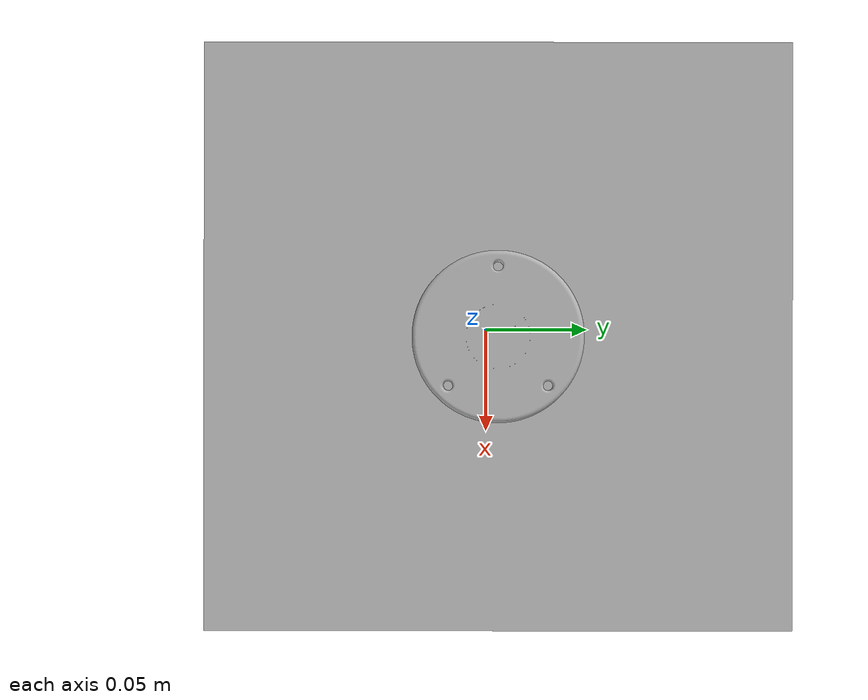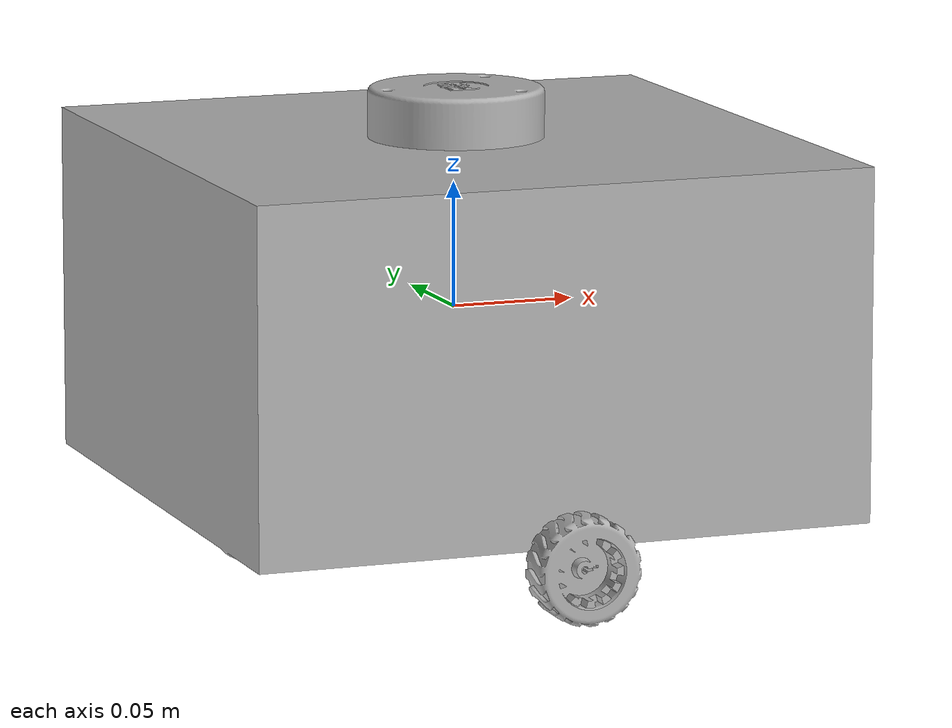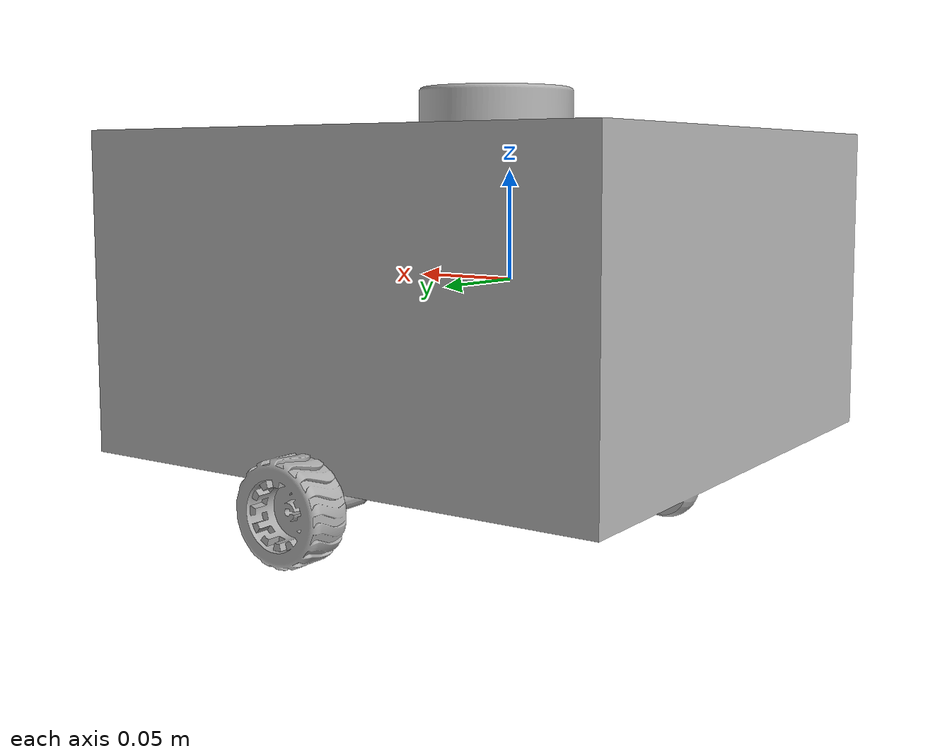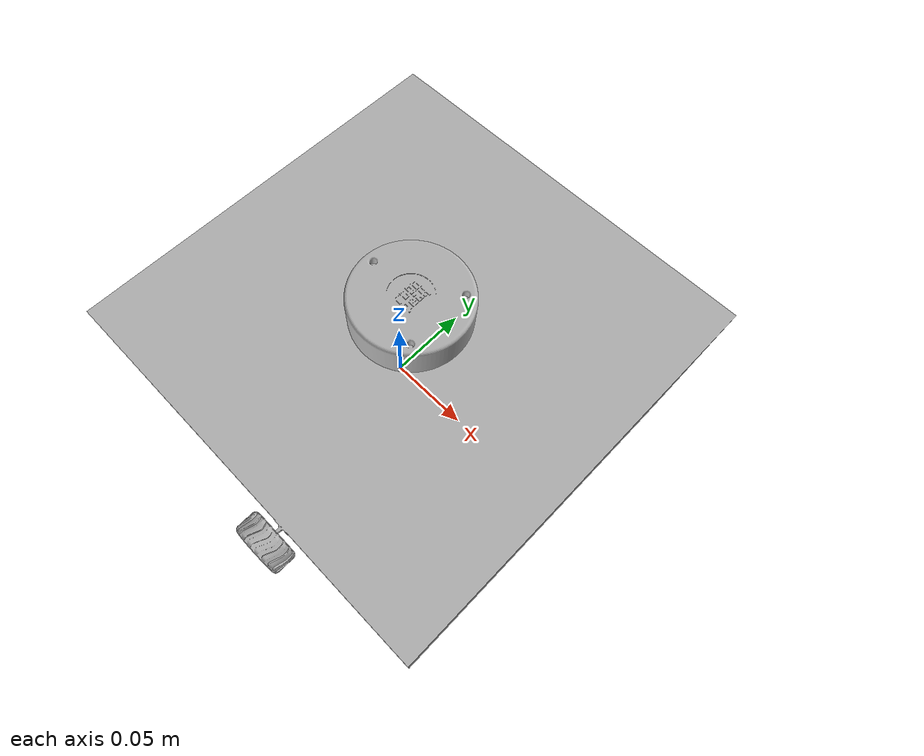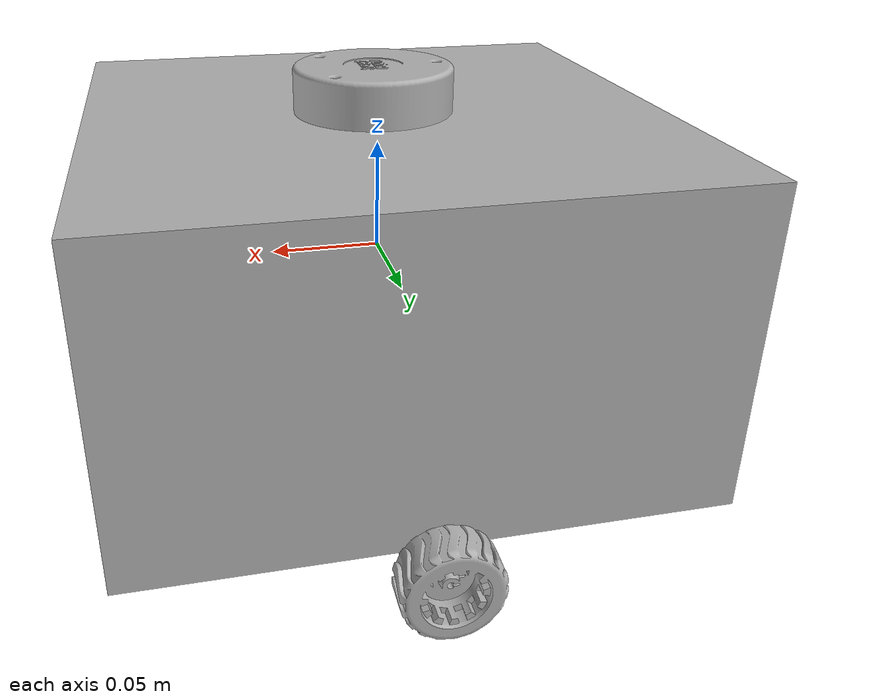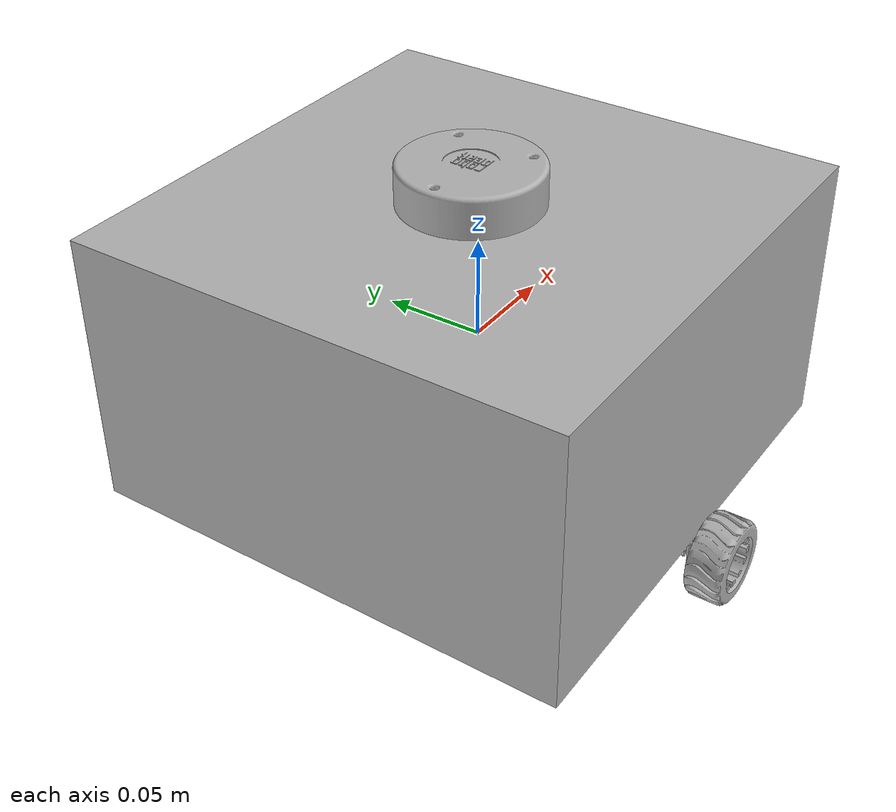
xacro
<?xml version="1.0" ?>
<robot name="cardo" xmlns:xacro="http://www.ros.org/wiki/xacro">

<xacro:include filename="$(find cadro_description)/urdf/materials.xacro" />
<xacro:include filename="$(find cadro_description)/urdf/cardo.trans" />
<xacro:include filename="$(find cadro_description)/urdf/cardo.gazebo" />
<link name="base_link">
  <inertial>
    <origin xyz="0.0032579068087706807 0.006021175164711509 -0.0016791583896604279" rpy="0 0 0"/>
    <mass value="15.093163777470394"/>
    <inertia ixx="0.103336" iyy="0.104072" izz="0.152929" ixy="-5e-06" iyz="4e-06" ixz="1.2e-05"/>
  </inertial>
  <visual>
    <origin xyz="0 0 0" rpy="0 0 0"/>
    <geometry>
      <mesh filename="file://$(find cadro_description)/meshes/base_link.stl" scale="0.001 0.001 0.001"/>
    </geometry>
    <material name="silver"/>
  </visual>
  <collision>
    <origin xyz="0 0 0" rpy="0 0 0"/>
    <geometry>
      <mesh filename="file://$(find cadro_description)/meshes/base_link.stl" scale="0.001 0.001 0.001"/>
    </geometry>
  </collision>
</link>

<link name="lidar_1_1">
  <inertial>
    <origin xyz="-0.1020444054381769 -0.0349867086487295 -0.00238170548299238" rpy="0 0 0"/>
    <mass value="1.3392964352221832"/>
    <inertia ixx="0.000967" iyy="0.000619" izz="0.001105" ixy="1e-06" iyz="0.000159" ixz="3e-06"/>
  </inertial>
  <visual>
    <origin xyz="-0.105378 -0.04777 -0.067125" rpy="0 0 0"/>
    <geometry>
      <mesh filename="file://$(find cadro_description)/meshes/lidar_1_1.stl" scale="0.001 0.001 0.001"/>
    </geometry>
    <material name="silver"/>
  </visual>
  <collision>
    <origin xyz="-0.105378 -0.04777 -0.067125" rpy="0 0 0"/>
    <geometry>
      <mesh filename="file://$(find cadro_description)/meshes/lidar_1_1.stl" scale="0.001 0.001 0.001"/>
    </geometry>
  </collision>
</link>

<link name="wheel_v5__1__1">
  <inertial>
    <origin xyz="-6.476358547345511e-06 -0.007540075460619161 1.1102320250644393e-07" rpy="0 0 0"/>
    <mass value="1.020021601354988396"/>
    <inertia ixx="3e-06" iyy="5e-06" izz="3e-06" ixy="0.0" iyz="-0.0" ixz="-0.0"/>
  </inertial>
  <visual>
    <origin xyz="-0.003242 0.125033 0.077875" rpy="0 0 0"/>
    <geometry>
      <mesh filename="file://$(find cadro_description)/meshes/wheel_v5__1__1.stl" scale="0.001 0.001 0.001"/>
    </geometry>
    <material name="silver"/>
  </visual>
  <collision>
    <origin xyz="-0.003242 0.125033 0.077875" rpy="0 0 0"/>
    <geometry>
      <mesh filename="file://$(find cadro_description)/meshes/wheel_v5__1__1.stl" scale="0.001 0.001 0.001"/>
    </geometry>
  </collision>
</link>

<link name="wheel_v5_1">
  <inertial>
    <origin xyz="5.812810676029349e-06 0.007539421323962625 1.1102320213174366e-07" rpy="0 0 0"/>
    <mass value="1.020021601354988396"/>
    <inertia ixx="3e-06" iyy="5e-06" izz="3e-06" ixy="0.0" iyz="0.0" ixz="0.0"/>
  </inertial>
  <visual>
    <origin xyz="-0.003242 -0.137067 0.077875" rpy="0 0 0"/>
    <geometry>
      <mesh filename="file://$(find cadro_description)/meshes/wheel_v5_1.stl" scale="0.001 0.001 0.001"/>
    </geometry>
    <material name="silver"/>
  </visual>
  <collision>
    <origin xyz="-0.003242 -0.137067 0.077875" rpy="0 0 0"/>
    <geometry>
      <mesh filename="file://$(find cadro_description)/meshes/wheel_v5_1.stl" scale="0.001 0.001 0.001"/>
    </geometry>
  </collision>
</link>

<joint name="Rigid 21" type="fixed">
  <origin xyz="0.105378 0.04777 0.067125" rpy="0 0 0"/>
  <parent link="base_link"/>
  <child link="lidar_1_1"/>
</joint>

<joint name="Revolute 22" type="continuous">
  <origin xyz="0.003242 -0.125033 -0.077875" rpy="0 0 0"/>
  <parent link="base_link"/>
  <child link="wheel_v5__1__1"/>
  <axis xyz="-0.0 1.0 -0.0"/>
</joint>

<joint name="Revolute 23" type="continuous">
  <origin xyz="0.003242 0.137067 -0.077875" rpy="0 0 0"/>
  <parent link="base_link"/>
  <child link="wheel_v5_1"/>
  <axis xyz="-0.0 1.0 -0.0"/>
</joint>

</robot>

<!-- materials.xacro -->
<robot name="cardo" xmlns:xacro="http://www.ros.org/wiki/xacro" >

<material name="silver">
  <color rgba="0.700 0.700 0.700 1.000"/>
</material>

</robot>

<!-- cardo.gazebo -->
<robot name="cardo" xmlns:xacro="http://www.ros.org/wiki/xacro" >

<xacro:property name="body_color" value="Gazebo/Black" />

<gazebo>
    <plugin name="wheel_drive_controller" filename="libgazebo_ros_diff_drive.so">

      <!-- wheels -->
      <left_joint>Revolute 23</left_joint>
      <right_joint>Revolute 22</right_joint>

      <!-- kinematics -->
      <wheel_separation>0.2</wheel_separation>
      <wheel_diameter>0.1</wheel_diameter>
      <max_wheel_torque>100.0</max_wheel_torque>
      <max_wheel_acceleration>10.0</max_wheel_acceleration>

      <!-- odometry  -->
      <odometry_source>1</odometry_source>
      <odometry_frame>odom</odometry_frame>
      <robot_base_frame>base_link</robot_base_frame>

      <!-- topic & re remappings -->
      <ros>
        <namespace>/</namespace>
        <remapping>/cmd_vel:=cmd_vel</remapping>
        <remapping>/odom:=odom</remapping>
      </ros>

      <publish_odom>true</publish_odom>
      <publish_odom_tf>true</publish_odom_tf>
      <publish_wheel_tf>true</publish_wheel_tf>
      <update_rate>100.0</update_rate>
    </plugin>
  </gazebo>

   <gazebo reference="lidar_1_1">
        <sensor name="laser" type="ray">
            <pose> 0 0 0 0 0 0 </pose>
            <visualize>true</visualize>
            <update_rate>30</update_rate>
            <ray>
                <scan>
                    <horizontal>
                        <samples>720</samples>
                        <min_angle>0</min_angle>
                        <max_angle>6.28</max_angle>
                    </horizontal>
                </scan>
                <range>
                    <min>0.3</min>
                    <max>8</max>
                </range>
            </ray>
            <plugin name="laser_controller" filename="libgazebo_ros_ray_sensor.so">
                <ros>
                    <remapping>~/out:=/laser/scan</remapping>
                </ros>
                <output_type>sensor_msgs/LaserScan</output_type>
                <frame_name>lidar_1_1</frame_name>
            </plugin>
        </sensor>
    </gazebo>
<gazebo reference="base_link">
  <material>${body_color}</material>
  <mu1>0.2</mu1>
  <mu2>0.2</mu2>
  <selfCollide>true</selfCollide>
  <gravity>true</gravity>
</gazebo>

<gazebo reference="wheel_v5__1__1">
  <material>Gazebo/Orange</material>
  <mu1>0.2</mu1>
  <mu2>0.2</mu2>
  <selfCollide>true</selfCollide>
</gazebo>

<gazebo reference="lidar_1_1">
  <material>Gazebo/Red</material>
  <mu1>0.2</mu1>
  <mu2>0.2</mu2>
  <selfCollide>true</selfCollide>
</gazebo>

<gazebo reference="wheel_v5__1__1">
  <material>Gazebo/Orange</material>
  <mu1>0.2</mu1>
  <mu2>0.2</mu2>
  <selfCollide>true</selfCollide>
</gazebo>

</robot>
